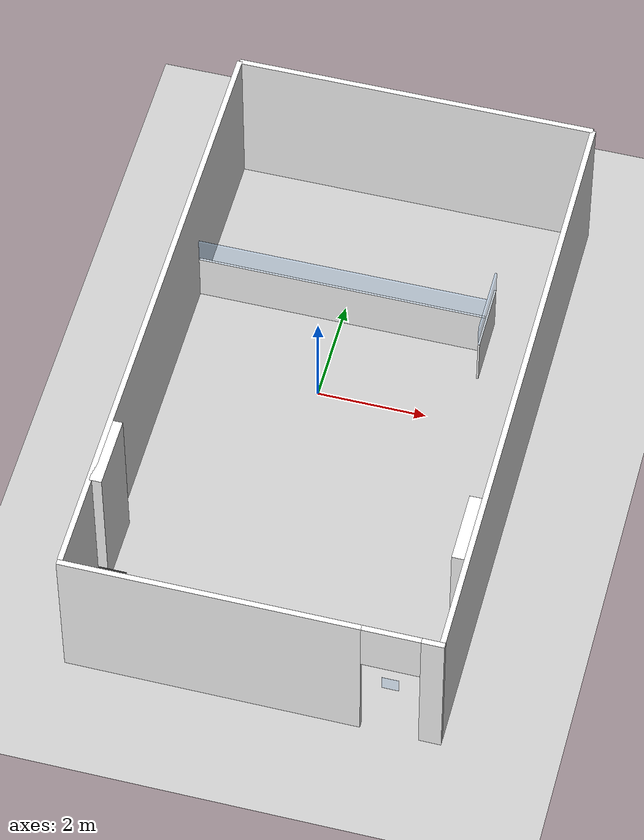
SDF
<sdf version="1.10">
 <world name="mobilab">
  <physics name="1ms" type="ignored">
   <max_step_size>0.005</max_step_size>
   <real_time_factor>1</real_time_factor>
   <real_time_update_rate>1000</real_time_update_rate>
  </physics>
  <plugin name="gz::sim::systems::Physics" filename="gz-sim-physics-system"/>
  <plugin name="gz::sim::systems::UserCommands" filename="gz-sim-user-commands-system"/>
  <plugin name="gz::sim::systems::SceneBroadcaster" filename="gz-sim-scene-broadcaster-system"/>
  <plugin name="gz::sim::systems::Contact" filename="gz-sim-contact-system"/>
  <plugin filename="gz-sim-sensors-system" name="gz::sim::systems::Sensors">
   <render_engine>ogre2</render_engine>
  </plugin>
  <plugin filename="gz-sim-imu-system" name="gz::sim::systems::Imu"/>
  <gravity>0 0 -9.8000000000000007</gravity>
  <magnetic_field>5.5644999999999998e-06 2.2875799999999999e-05 -4.2388400000000002e-05</magnetic_field>
  <atmosphere type="adiabatic"/>
  <scene>
   <ambient>0.400000006 0.400000006 0.400000006 1</ambient>
   <background>0.699999988 0.699999988 0.699999988 1</background>
   <shadows>true</shadows>
  </scene>
  <model name="ground_plane">
   <static>true</static>
   <link name="link">
    <collision name="collision">
     <geometry><plane><normal>0 0 1</normal><size>100 100</size></plane></geometry>
    </collision>
    <visual name="visual">
     <geometry><plane><normal>0 0 1</normal><size>100 100</size></plane></geometry>
     <material>
      <ambient>0.8 0.8 0.8 1</ambient>
      <diffuse>0.8 0.8 0.8 1</diffuse>
      <specular>0.8 0.8 0.8 1</specular>
     </material>
    </visual>
    <inertial>
     <mass>1</mass>
     <inertia><ixx>1</ixx><ixy>0</ixy><ixz>0</ixz><iyy>1</iyy><iyz>0</iyz><izz>1</izz></inertia>
    </inertial>
   </link>
  </model>
  <model name="wall_desk_1">
   <pose>0.0 1.7 0.5 0.0 0.0 0.0</pose>
   <link name="box_link">
    <inertial>
     <inertia><ixx>0.16666</ixx><ixy>0</ixy><ixz>0</ixz><iyy>0.16666</iyy><iyz>0</iyz><izz>0.16666</izz></inertia>
     <mass>1</mass>
    </inertial>
    <collision name="box_collision"><geometry><box><size>5.36 0.035 1</size></box></geometry></collision>
    <visual name="box_visual">
     <geometry><box><size>5.36 0.04 1</size></box></geometry>
     <material>
      <ambient>0.95 0.95 0.95 1.0</ambient>
      <diffuse>0.98 0.98 0.98 1.0</diffuse>
      <specular>0.05 0.05 0.05 1.0</specular>
      <emissive>0.0 0.0 0.0 1.0</emissive>
     </material>
    </visual>
   </link>
   <static>true</static>
  </model>
  <model name="window_desk_1">
   <pose>0.0 1.7 1.25 0.0 0.0 0.0</pose>
   <link name="box_link">
    <inertial>
     <inertia><ixx>0.16666</ixx><ixy>0</ixy><ixz>0</ixz><iyy>0.16666</iyy><iyz>0</iyz><izz>0.16666</izz></inertia>
     <mass>1</mass>
    </inertial>
    <collision name="box_collision"><geometry><box><size>5.36 0.035 0.5</size></box></geometry></collision>
    <visual name="box_visual">
     <geometry><box><size>5.36 0.04 0.5</size></box></geometry>
     <material>
      <ambient>0.6 0.8 1.0 0.3</ambient>
      <diffuse>0.6 0.8 1.0 0.3</diffuse>
      <specular>1.0 1.0 1.0 0.5</specular>
      <emissive>0.0 0.0 0.0 0.3</emissive>
     </material>
    </visual>
   </link>
   <static>true</static>
  </model>
  <model name="wall_desk_2">
   <pose>2.698 1.7 0.5 0.0 0.0 0.0</pose>
   <link name="box_link">
    <inertial>
     <inertia><ixx>0.16666</ixx><ixy>0</ixy><ixz>0</ixz><iyy>0.16666</iyy><iyz>0</iyz><izz>0.16666</izz></inertia>
     <mass>1</mass>
    </inertial>
    <collision name="box_collision"><geometry><box><size>0.035 1.285 1</size></box></geometry></collision>
    <visual name="box_visual">
     <geometry><box><size>0.035 1.285 1</size></box></geometry>
     <material>
      <ambient>0.95 0.95 0.95 1.0</ambient>
      <diffuse>0.98 0.98 0.98 1.0</diffuse>
      <specular>0.05 0.05 0.05 1.0</specular>
      <emissive>0.0 0.0 0.0 1.0</emissive>
     </material>
    </visual>
   </link>
   <static>true</static>
  </model>
  <model name="window_desk_2">
   <pose>2.698 1.7 1.25 0.0 0.0 0.0</pose>
   <link name="box_link">
    <inertial>
     <inertia><ixx>0.16666</ixx><ixy>0</ixy><ixz>0</ixz><iyy>0.16666</iyy><iyz>0</iyz><izz>0.16666</izz></inertia>
     <mass>1</mass>
    </inertial>
    <collision name="box_collision"><geometry><box><size>0.035 1.285 0.5</size></box></geometry></collision>
    <visual name="box_visual">
     <geometry><box><size>0.035 1.285 0.5</size></box></geometry>
     <material>
      <ambient>0.6 0.8 1.0 0.3</ambient>
      <diffuse>0.6 0.8 1.0 0.3</diffuse>
      <specular>1.0 1.0 1.0 0.5</specular>
      <emissive>0.0 0.0 0.0 0.3</emissive>
     </material>
    </visual>
   </link>
   <static>true</static>
  </model>
  <model name="wall_room_1">
   <pose>-2.73 -0.9 1.5 0.0 0.0 0.0</pose>
   <link name="box_link">
    <inertial>
     <inertia><ixx>0.16666</ixx><ixy>0</ixy><ixz>0</ixz><iyy>0.16666</iyy><iyz>0</iyz><izz>0.16666</izz></inertia>
     <mass>1</mass>
    </inertial>
    <collision name="box_collision"><geometry><box><size>0.1 11.4 3</size></box></geometry></collision>
    <visual name="box_visual">
     <geometry><box><size>0.1 11.4 3</size></box></geometry>
     <material>
      <ambient>0.95 0.95 0.95 1.0</ambient>
      <diffuse>0.98 0.98 0.98 1.0</diffuse>
      <specular>0.05 0.05 0.05 1.0</specular>
      <emissive>0.0 0.0 0.0 1.0</emissive>
     </material>
    </visual>
   </link>
   <static>true</static>
  </model>
  <model name="wall_room_2">
   <pose>3.87 -0.9 1.5 0.0 0.0 0.0</pose>
   <link name="box_link">
    <inertial>
     <inertia><ixx>0.16666</ixx><ixy>0</ixy><ixz>0</ixz><iyy>0.16666</iyy><iyz>0</iyz><izz>0.16666</izz></inertia>
     <mass>1</mass>
    </inertial>
    <collision name="box_collision"><geometry><box><size>0.1 11.4 3</size></box></geometry></collision>
    <visual name="box_visual">
     <geometry><box><size>0.1 11.4 3</size></box></geometry>
     <material>
      <ambient>0.95 0.95 0.95 1.0</ambient>
      <diffuse>0.98 0.98 0.98 1.0</diffuse>
      <specular>0.05 0.05 0.05 1.0</specular>
      <emissive>0.0 0.0 0.0 1.0</emissive>
     </material>
    </visual>
   </link>
   <static>true</static>
  </model>
  <model name="wall_room_3">
   <pose>0.57 4.8 1.5 0.0 0.0 0.0</pose>
   <link name="box_link">
    <inertial>
     <inertia><ixx>0.16666</ixx><ixy>0</ixy><ixz>0</ixz><iyy>0.16666</iyy><iyz>0</iyz><izz>0.16666</izz></inertia>
     <mass>1</mass>
    </inertial>
    <collision name="box_collision"><geometry><box><size>6.7 0.1 3</size></box></geometry></collision>
    <visual name="box_visual">
     <geometry><box><size>6.6 0.1 3</size></box></geometry>
     <material>
      <ambient>0.95 0.95 0.95 1.0</ambient>
      <diffuse>0.98 0.98 0.98 1.0</diffuse>
      <specular>0.05 0.05 0.05 1.0</specular>
      <emissive>0.0 0.0 0.0 1.0</emissive>
     </material>
    </visual>
   </link>
   <static>true</static>
  </model>
  <model name="wall_room_4_1">
   <pose>-0.14 -6.65 1.5 0.0 0.0 0.0</pose>
   <link name="box_link">
    <inertial>
     <inertia><ixx>0.16666</ixx><ixy>0</ixy><ixz>0</ixz><iyy>0.16666</iyy><iyz>0</iyz><izz>0.16666</izz></inertia>
     <mass>1</mass>
    </inertial>
    <collision name="box_collision"><geometry><box><size>5.262038 0.1 3</size></box></geometry></collision>
    <visual name="box_visual">
     <geometry><box><size>5.262038 0.1 3</size></box></geometry>
     <material>
      <ambient>0.95 0.95 0.95 1.0</ambient>
      <diffuse>0.98 0.98 0.98 1.0</diffuse>
      <specular>0.05 0.05 0.05 1.0</specular>
      <emissive>0.0 0.0 0.0 1.0</emissive>
     </material>
    </visual>
   </link>
   <static>true</static>
  </model>
  <model name="wall_room_4_2">
   <pose>3.719825 -6.65 1.5 0.0 0.0 0.0</pose>
   <link name="box_link">
    <inertial>
     <inertia><ixx>0.16666</ixx><ixy>0</ixy><ixz>0</ixz><iyy>0.16666</iyy><iyz>0</iyz><izz>0.16666</izz></inertia>
     <mass>1</mass>
    </inertial>
    <collision name="box_collision"><geometry><box><size>0.400112 0.1 3</size></box></geometry></collision>
    <visual name="box_visual">
     <geometry><box><size>0.400112 0.1 3</size></box></geometry>
     <material>
      <ambient>0.95 0.95 0.95 1.0</ambient>
      <diffuse>0.98 0.98 0.98 1.0</diffuse>
      <specular>0.05 0.05 0.05 1.0</specular>
      <emissive>0.0 0.0 0.0 1.0</emissive>
     </material>
    </visual>
   </link>
   <static>true</static>
  </model>
  <model name="wall_room_4_3">
   <pose>3.0 -6.65 2.485 0.0 0.0 0</pose>
   <link name="box_link">
    <inertial>
     <inertia><ixx>0.16666</ixx><ixy>0</ixy><ixz>0</ixz><iyy>0.16666</iyy><iyz>0</iyz><izz>0.16666</izz></inertia>
     <mass>1</mass>
    </inertial>
    <collision name="box_collision"><geometry><box><size>1.04 0.1 1.03</size></box></geometry></collision>
    <visual name="box_visual">
     <geometry><box><size>1.04 0.1 1.03</size></box></geometry>
     <material>
      <ambient>0.95 0.95 0.95 1.0</ambient>
      <diffuse>0.98 0.98 0.98 1.0</diffuse>
      <specular>0.05 0.05 0.05 1.0</specular>
      <emissive>0.0 0.0 0.0 1.0</emissive>
     </material>
    </visual>
   </link>
   <static>true</static>
  </model>
  <model name="window_room_4">
   <pose>3.0 -6.65 1.473650 0.0 0.0 0</pose>
   <link name="box_link">
    <inertial>
     <inertia><ixx>0.16666</ixx><ixy>0</ixy><ixz>0</ixz><iyy>0.16666</iyy><iyz>0</iyz><izz>0.16666</izz></inertia>
     <mass>1</mass>
    </inertial>
    <collision name="box_collision"><geometry><box><size>0.3 0.005 0.3</size></box></geometry></collision>
    <visual name="box_visual">
     <geometry><box><size>0.3 0.005 0.3</size></box></geometry>
     <material>
      <ambient>0.6 0.8 1.0 0.3</ambient>
      <diffuse>0.6 0.8 1.0 0.3</diffuse>
      <specular>1.0 1.0 1.0 0.5</specular>
      <emissive>0.0 0.0 0.0 0.3</emissive>
     </material>
    </visual>
   </link>
   <static>true</static>
  </model>
  <model name="col_room_1">
   <pose>3.71 -4.25 1.5 0.0 0.0 0.0</pose>
   <link name="box_link">
    <inertial>
     <inertia><ixx>0.16666</ixx><ixy>0</ixy><ixz>0</ixz><iyy>0.16666</iyy><iyz>0</iyz><izz>0.16666</izz></inertia>
     <mass>1</mass>
    </inertial>
    <collision name="box_collision"><geometry><box><size>0.22 1.3 3</size></box></geometry></collision>
    <visual name="box_visual">
     <geometry><box><size>0.22 1.3 3</size></box></geometry>
     <material>
      <ambient>0.95 0.95 0.95 1.0</ambient>
      <diffuse>0.98 0.98 0.98 1.0</diffuse>
      <specular>0.05 0.05 0.05 1.0</specular>
      <emissive>0.0 0.0 0.0 1.0</emissive>
     </material>
    </visual>
   </link>
   <static>true</static>
  </model>
  <model name="col_room_2">
   <pose>-2.615 -4.25 1.5 0.0 0.0 0.0</pose>
   <link name="box_link">
    <inertial>
     <inertia><ixx>0.16666</ixx><ixy>0</ixy><ixz>0</ixz><iyy>0.16666</iyy><iyz>0</iyz><izz>0.16666</izz></inertia>
     <mass>1</mass>
    </inertial>
    <collision name="box_collision"><geometry><box><size>0.22 1.3 3</size></box></geometry></collision>
    <visual name="box_visual">
     <geometry><box><size>0.22 1.3 3</size></box></geometry>
     <material>
      <ambient>0.95 0.95 0.95 1.0</ambient>
      <diffuse>0.98 0.98 0.98 1.0</diffuse>
      <specular>0.05 0.05 0.05 1.0</specular>
      <emissive>0.0 0.0 0.0 1.0</emissive>
     </material>
    </visual>
   </link>
   <static>true</static>
  </model>
  <model name="cube_1">
   <pose>-2.4 -5.2 0.25 0.0 0.0 0.0</pose>
   <link name="box_link">
    <inertial>
     <inertia><ixx>0.16666</ixx><ixy>0</ixy><ixz>0</ixz><iyy>0.16666</iyy><iyz>0</iyz><izz>0.16666</izz></inertia>
     <mass>1</mass>
    </inertial>
    <collision name="box_collision"><geometry><box><size>0.5 0.5 0.5</size></box></geometry></collision>
    <visual name="box_visual">
     <geometry><box><size>0.5 0.5 0.5</size></box></geometry>
     <material>
      <ambient>0.1 0.1 0.1 1</ambient>
      <diffuse>0.2 0.2 0.2 1</diffuse>
      <specular>0.2 0.2 0.2 1</specular>
      <emissive>0 0 0 1</emissive>
     </material>
    </visual>
   </link>
   <static>true</static>
  </model>
  <light type="point" name="ceiling_light_1">
   <pose>0 -5.4 3 0 0 0</pose>
   <diffuse>1 1 1 1</diffuse>
   <specular>0.0 0.0 0.0 0</specular>
   <attenuation>
    <range>50</range>
    <linear>0</linear>
    <constant>0</constant>
    <quadratic>0.02</quadratic>
   </attenuation>
   <visualize>false</visualize>
   <intensity>0.20</intensity>
  </light>
  <light type="point" name="ceiling_light_2">
   <pose>0 -3.6 3 0 0 0</pose>
   <diffuse>1 1 1 1</diffuse>
   <specular>0.0 0.0 0.0 0</specular>
   <attenuation>
    <range>50</range>
    <linear>0</linear>
    <constant>0</constant>
    <quadratic>0.02</quadratic>
   </attenuation>
   <visualize>false</visualize>
   <intensity>0.20</intensity>
  </light>
  <light type="point" name="ceiling_light_3">
   <pose>0 -1.2 3 0 0 0</pose>
   <diffuse>1 1 1 1</diffuse>
   <specular>0.0 0.0 0.0 0</specular>
   <attenuation>
    <range>50</range>
    <linear>0</linear>
    <constant>0</constant>
    <quadratic>0.02</quadratic>
   </attenuation>
   <visualize>false</visualize>
   <intensity>0.20</intensity>
  </light>
  <light type="point" name="ceiling_light_4">
   <pose>0 0.6 3 0 0 0</pose>
   <diffuse>1 1 1 1</diffuse>
   <specular>0.0 0.0 0.0 0</specular>
   <attenuation>
    <range>50</range>
    <linear>0</linear>
    <constant>0</constant>
    <quadratic>0.02</quadratic>
   </attenuation>
   <visualize>false</visualize>
   <intensity>0.20</intensity>
  </light>
  <light type="point" name="ceiling_light_5">
   <pose>0 2.4 3 0 0 0</pose>
   <diffuse>1 1 1 1</diffuse>
   <specular>0.0 0.0 0.0 0</specular>
   <attenuation>
    <range>50</range>
    <linear>0</linear>
    <constant>0</constant>
    <quadratic>0.02</quadratic>
   </attenuation>
   <visualize>false</visualize>
   <intensity>0.20</intensity>
  </light>
  <light name="sun" type="directional">
   <pose>0 0 10 0 0 0</pose>
   <intensity>1</intensity>
   <diffuse>1.0 1.0 1.0 1</diffuse>
   <specular>0.1 0.1 0.1 1</specular>
   <direction>-0.5 0.5 -1</direction>
   <attenuation>
    <range>1000</range>
    <linear>0.01</linear>
    <constant>0.90000000000000002</constant>
    <quadratic>0.001</quadratic>
   </attenuation>
   <spot><inner_angle>0</inner_angle><outer_angle>0</outer_angle><falloff>0</falloff></spot>
  </light>
 </world>
</sdf>
